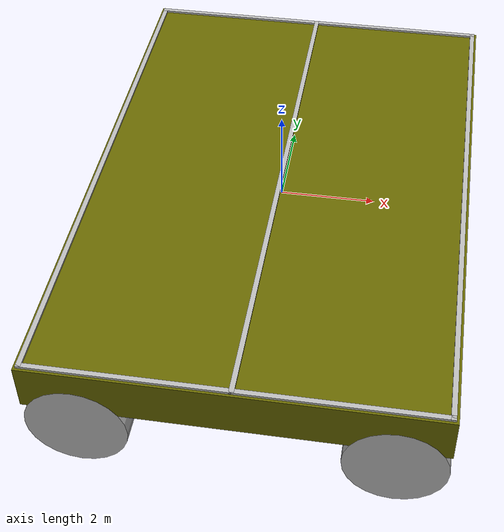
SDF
<?xml version='1.0'?>
<sdf version='1.4'>
  <model name="tug_boat">
    <pose>0 0 0 0 0 1.57</pose>
    <static>false</static>

    <!-- LINK -->
    <link name="body">
      <pose>0 0 0 0 0 0</pose>
      <wind>true</wind>

      <collision name="body">
        <geometry>
          <box><size>12.0 8.0 1.0</size></box>
        </geometry>
      </collision>

      <visual name="body">
        <geometry>
          <box><size>12.0 8.0 1.0</size></box>
        </geometry>

        <material>
          <diffuse>0.4 0.4 0 1</diffuse>
        </material>
      </visual>

      <inertial>
        <mass> 1000 </mass>
      </inertial>
    </link>

    <link name="right_floater">
      <pose>0 -3 -1 0 1.57 0</pose>
      <collision name="right_floater">
        <geometry>
          <cylinder>
            <radius>1.0</radius>
            <length>12.0</length>
          </cylinder>
        </geometry>
      </collision>

      <visual name="right_floater">
        <geometry>
          <cylinder>
            <radius>1.0</radius>
            <length>12.0</length>
          </cylinder>
        </geometry>
      </visual>

      <inertial>
        <mass> 30 </mass>
      </inertial>

    </link>

    <link name="left_floater">
      <pose>0 3 -1 0 1.57 0</pose>
      <collision name="left_floater">
        <geometry>
          <cylinder>
            <radius>1.0</radius>
            <length>12.0</length>
          </cylinder>
        </geometry>
      </collision>

      <visual name="left_floater">
        <geometry>
          <cylinder>
            <radius>1.0</radius>
            <length>12.0</length>
          </cylinder>
        </geometry>
      </visual>
      <inertial>
        <mass> 30 </mass>
      </inertial>
    </link>

    <link name="center_line">
      <pose>0 0 0.5 0 0 0</pose>

      <collision name="center_line">
        <geometry>
          <box><size>11.9 0.1 0.1</size></box>
        </geometry>
      </collision>

      <visual name="center_line">
        <geometry>
          <box><size>11.9 0.1 0.1</size></box>
        </geometry>
      </visual>
    </link>

    <link name="left_line">
      <pose>0 -3.9 0.5 0 0 0</pose>

      <collision name="left_line">
        <geometry>
          <box><size>11.9 0.1 0.1</size></box>
        </geometry>
      </collision>

      <visual name="left_line">
        <geometry>
          <box><size>11.9 0.1 0.1</size></box>
        </geometry>
      </visual>
    </link>

    <link name="right_line">
      <pose>0 3.9 0.5 0 0 0</pose>

      <collision name="right_line">
        <geometry>
          <box><size>11.9 0.1 0.1</size></box>
        </geometry>
      </collision>

      <visual name="right_line">
        <geometry>
          <box><size>11.9 0.1 0.1</size></box>
        </geometry>
      </visual>
    </link>

    <link name="front_line">
      <pose>5.9 0 0.5 0 0 0</pose>

      <collision name="front_line">
        <geometry>
          <box><size>0.1 7.9 0.1</size></box>
        </geometry>
      </collision>

      <visual name="front_line">
        <geometry>
          <box><size>0.1 7.9 0.1</size></box>
        </geometry>
      </visual>
    </link>

    <link name="back_line">
      <pose>-5.9 0 0.5 0 0 0</pose>

      <collision name="back_line">
        <geometry>
          <box><size>0.1 7.9 0.1</size></box>
        </geometry>
      </collision>

      <visual name="back_line">
        <geometry>
          <box><size>0.1 7.9 0.1</size></box>
        </geometry>
      </visual>
    </link>

    <!-- JOINT -->
    <joint name="body2right_floater" type="fixed">
      <pose>0 0 0 0 0 0</pose>
      <parent>body</parent>
      <child>right_floater</child>
    </joint>

    <joint name="body2left_floater" type="fixed">
      <pose>0 0 0 0 0 0</pose>
      <parent>body</parent>
      <child>left_floater</child>
    </joint>

    <joint name="body2center_line" type="fixed">
      <pose>0 0 0 0 0 0</pose>
      <parent>body</parent>
      <child>center_line</child>
    </joint>

    <joint name="body2left_line" type="fixed">
      <pose>0 0 0 0 0 0</pose>
      <parent>body</parent>
      <child>left_line</child>
    </joint>

    <joint name="body2right_line" type="fixed">
      <pose>0 0 0 0 0 0</pose>
      <parent>body</parent>
      <child>right_line</child>
    </joint>

    <joint name="body2front_line" type="fixed">
      <pose>0 0 0 0 0 0</pose>
      <parent>body</parent>
      <child>front_line</child>
    </joint>

    <joint name="body2back_line" type="fixed">
      <pose>0 0 0 0 0 0</pose>
      <parent>body</parent>
      <child>back_line</child>
    </joint>

    <!-- PLUGIN -->
    <plugin name="BuoyancyPlugin" filename="libbuoyancy_gazebo_plugin.so">
      <fluid_density>1000</fluid_density>
      <fluid_level>0.0</fluid_level>
      <fluid_drag>5.0</fluid_drag>
      <link>
        <name>body</name>
        <center_of_volume>0 5.5 1</center_of_volume>
        <area>0.63</area>
        <height>0.70</height>
      </link>
    </plugin>

    <plugin name="BuoyancyPlugin" filename="libbuoyancy_gazebo_plugin.so">
      <fluid_density>1000</fluid_density>
      <fluid_level>0.0</fluid_level>
      <fluid_drag>5.0</fluid_drag>
      <link>
        <name>body</name>
        <center_of_volume>0 -5.5 1</center_of_volume>
        <area>0.63</area>
        <height>0.70</height>
      </link>
    </plugin>

    <plugin name="BuoyancyPlugin" filename="libbuoyancy_gazebo_plugin.so">
      <fluid_density>1000</fluid_density>
      <fluid_level>0.0</fluid_level>
      <fluid_drag>5.0</fluid_drag>
      <link>
        <name>body</name>
        <center_of_volume>-3.5 0 1</center_of_volume>
        <area>0.63</area>
        <height>0.70</height>
      </link>
    </plugin>

    <plugin name="BuoyancyPlugin" filename="libbuoyancy_gazebo_plugin.so">
      <fluid_density>1000</fluid_density>
      <fluid_level>0.0</fluid_level>
      <fluid_drag>5.0</fluid_drag>
      <link>
        <name>body</name>
        <center_of_volume>3.5 0 1</center_of_volume>
        <area>0.63</area>
        <height>0.70</height>
      </link>
    </plugin>

    <plugin name="ThrusterPlugin" filename="libusv_gazebo_thrust_plugin.so">
      <bodyName>body</bodyName>
      <mappingType>1</mappingType> <!-- 0 is liner, 1 is nonliner -->
      <boatArea>96.0</boatArea>
    	<boatWidth>8.0</boatWidth>
    	<boatLength>12.0</boatLength>
    	<thrustOffsetZ>-0.5</thrustOffsetZ>
    	<!-- Thrust specification -->
    	<maxCmd>1.0</maxCmd>
    	<maxForceFwd>100.0</maxForceFwd>
    	<maxForceRev>-100.0</maxForceRev>
    	<cmdTimeout>1.0</cmdTimeout>
    </plugin>

  </model>
</sdf>
